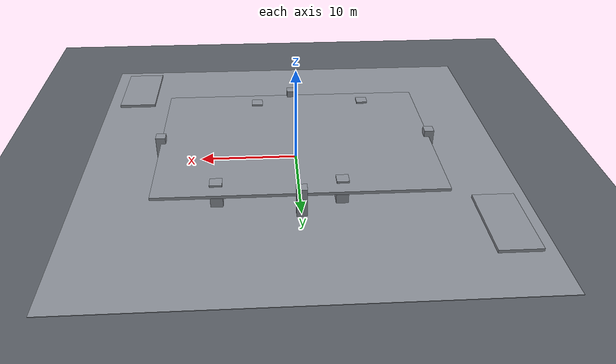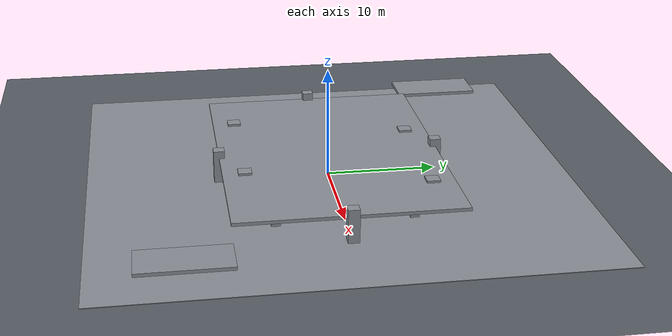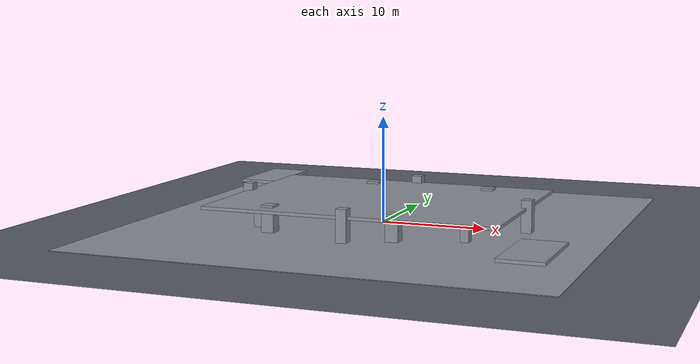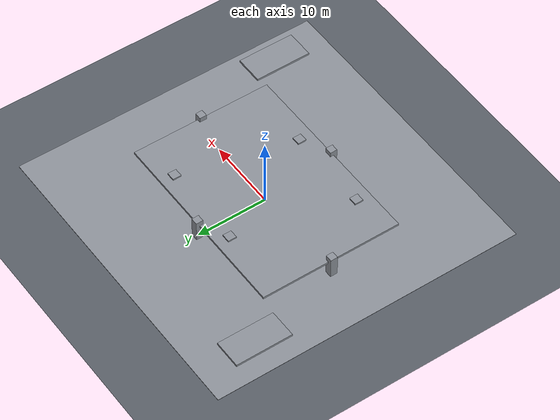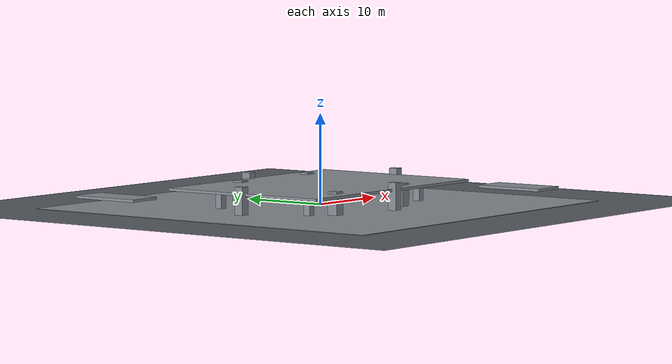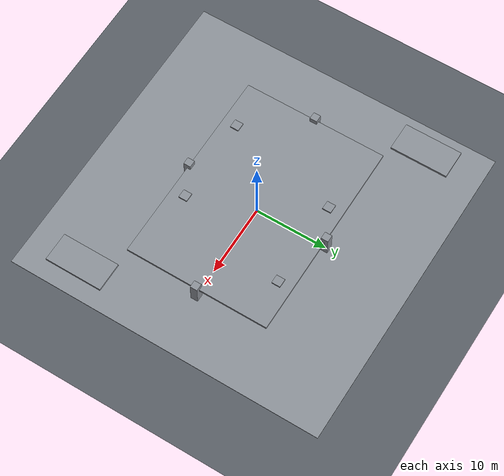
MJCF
<!-- Generated by robot_lab_maps/tools/gen_mjcf_worlds.py from
     maps/aerial_indoor/worlds/aerial_indoor.world - do not edit by hand. -->
<mujoco model="aerial_indoor">
  <option gravity="0 0 -9.81" />
  <compiler angle="radian" />
  <worldbody>
    <geom type="plane" size="100 100 0.1" contype="0" conaffinity="0" rgba="0.35 0.37 0.4 1" />
    <geom pos="0 0 -0.05" quat="1 0 0 0" rgba="0.55 0.57 0.6 1" type="box" size="22 22 0.05" />
    <geom pos="0 0 2.15" quat="1 0 0 0" rgba="0.55 0.57 0.6 1" type="box" size="14 10 0.15" />
    <geom pos="-10 -6 1" quat="1 0 0 0" rgba="0.55 0.57 0.6 1" type="box" size="0.4 0.4 1" />
    <geom pos="10 -6 1" quat="1 0 0 0" rgba="0.55 0.57 0.6 1" type="box" size="0.4 0.4 1" />
    <geom pos="-10 6 1" quat="1 0 0 0" rgba="0.55 0.57 0.6 1" type="box" size="0.4 0.4 1" />
    <geom pos="10 6 1" quat="1 0 0 0" rgba="0.55 0.57 0.6 1" type="box" size="0.4 0.4 1" />
    <geom pos="-14 0 1.5" quat="1 0 0 0" rgba="0.55 0.57 0.6 1" type="box" size="0.5 0.5 1.5" />
    <geom pos="14 0 1.5" quat="1 0 0 0" rgba="0.55 0.57 0.6 1" type="box" size="0.5 0.5 1.5" />
    <geom pos="0 -10 1.5" quat="1 0 0 0" rgba="0.55 0.57 0.6 1" type="box" size="0.5 0.5 1.5" />
    <geom pos="0 10 1.5" quat="1 0 0 0" rgba="0.55 0.57 0.6 1" type="box" size="0.5 0.5 1.5" />
    <geom pos="-18 14 1.35" quat="1 0 0 0" rgba="0.55 0.57 0.6 1" type="box" size="2 4 0.15" />
    <geom pos="18 -14 1.35" quat="1 0 0 0" rgba="0.55 0.57 0.6 1" type="box" size="2 4 0.15" />
    <geom pos="-8 -8 1.25" quat="1 0 0 0" rgba="0.55 0.57 0.6 1" type="box" size="0.6 0.6 1.25" />
    <geom pos="-4 8 1.25" quat="1 0 0 0" rgba="0.55 0.57 0.6 1" type="box" size="0.6 0.6 1.25" />
    <geom pos="4 -8 1.25" quat="1 0 0 0" rgba="0.55 0.57 0.6 1" type="box" size="0.6 0.6 1.25" />
    <geom pos="8 8 1.25" quat="1 0 0 0" rgba="0.55 0.57 0.6 1" type="box" size="0.6 0.6 1.25" />
    <light diffuse="0.8 0.8 0.8" pos="0 0 10" dir="0 0 -1" castshadow="true" />
    <light diffuse="0.3 0.3 0.3" pos="0 -6 6" dir="0 1 -1" />
  </worldbody>
</mujoco>
